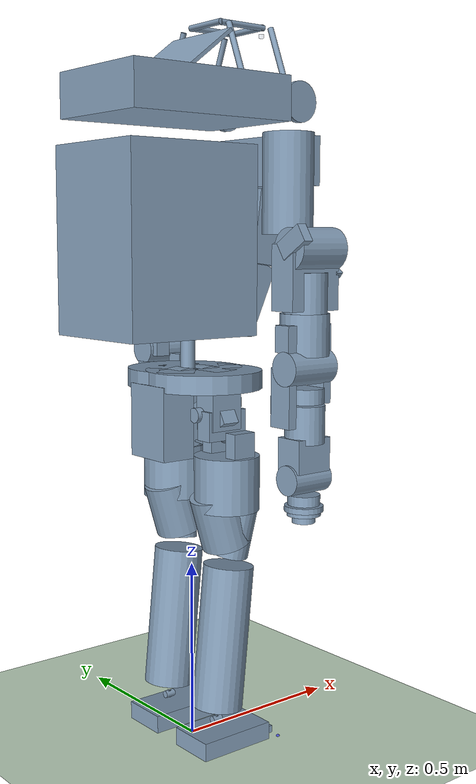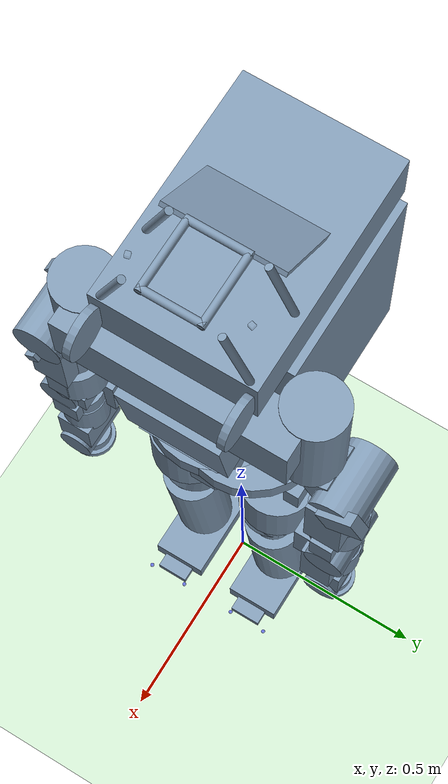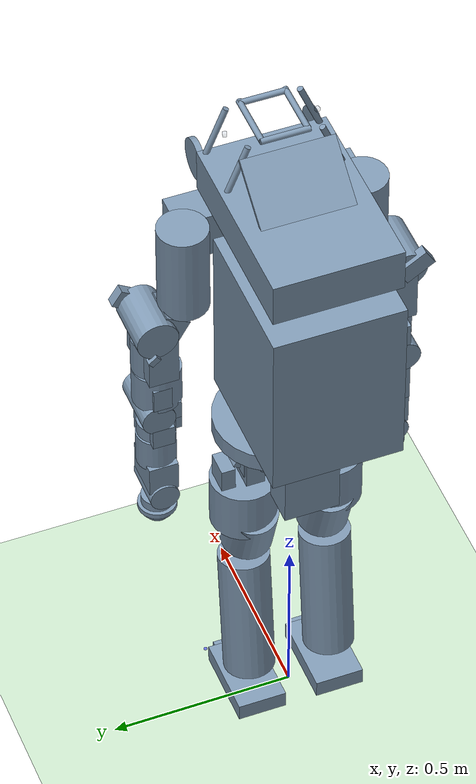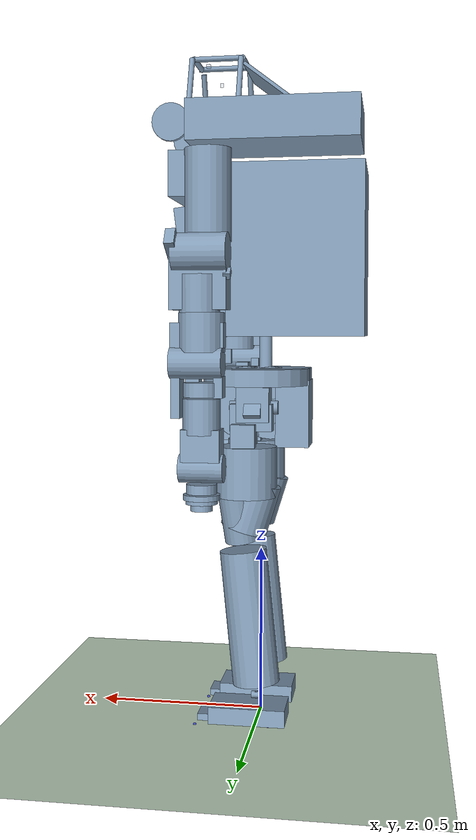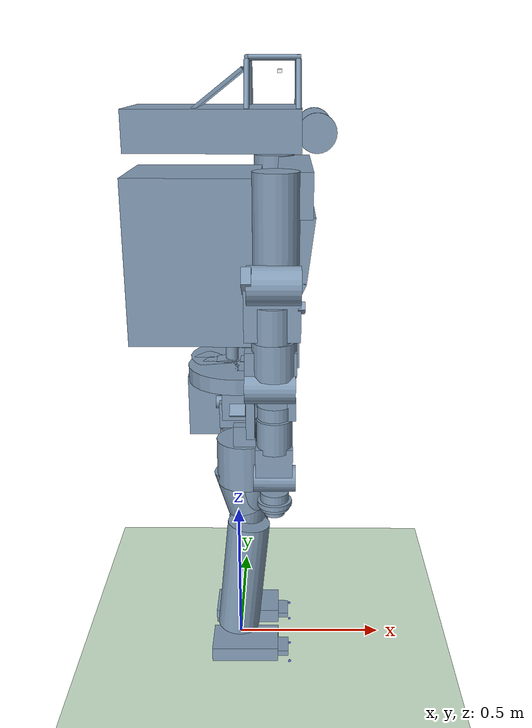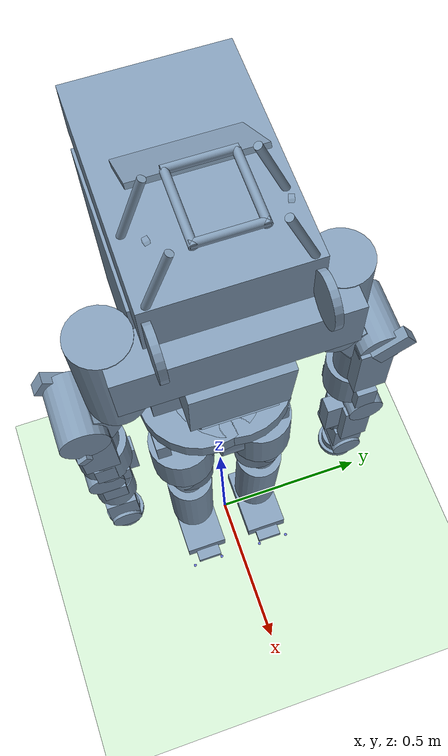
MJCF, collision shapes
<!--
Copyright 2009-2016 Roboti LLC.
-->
<mujoco model="Atlas">
	<compiler coordinate="local" angle="radian" meshdir="meshes/"/>
	<size njmax ="1000" nuserdata="600000"/>
	<default>
		<site type="sphere" size="0.005"/>
		<joint limited="true" damping="0.0" armature="0.01" type="hinge" pos="0 0 0"/>
		<geom contype="0" conaffinity="1" friction="1.0 0.1 0.1" rgba="0.5 0.6 0.7 0.2" margin="0.001" group="1" />
		<motor ctrllimited="true" ctrlrange="-0.95 0.95"/>
		<default class="viz">
			<geom contype="0" conaffinity="0" group="0" type="mesh" rgba=".6 .6 .7 1"/>
		</default>
	</default>

	<asset>
		<mesh name="pelvis"         file="pelvis.stl"/>
		<mesh name="ltorso"         file="ltorso.stl"/>
		<mesh name="mtorso"         file="mtorso.stl"/>
		<mesh name="utorso"         file="utorso.stl"/>
		<mesh name="r_clav"         file="r_clav.stl"/>
		<mesh name="r_scap"         file="r_scap.stl"/>
		<mesh name="r_uarm"         file="r_uarm.stl"/>
		<mesh name="r_larm"         file="r_larm.stl"/>
		<mesh name="r_farm"         file="r_farm.stl"/>
		<mesh name="r_hand"         file="r_hand.stl"/>
		<mesh name="l_uglut"        file="l_uglut.stl"/>
		<mesh name="l_lglut"        file="l_lglut.stl"/>
		<mesh name="l_uleg"         file="l_uleg.stl"/>
		<mesh name="l_lleg"         file="l_lleg.stl"/>
		<mesh name="l_talus"        file="l_talus.stl"/>
		<mesh name="l_foot"         file="l_foot.stl"/>
		<mesh name="r_uglut"        file="r_uglut.stl"/>
		<mesh name="r_lglut"        file="r_lglut.stl"/>
		<mesh name="r_uleg"         file="r_uleg.stl"/>
		<mesh name="r_lleg"         file="r_lleg.stl"/>
		<mesh name="r_talus"        file="r_talus.stl"/>
		<mesh name="r_foot"         file="r_foot.stl"/>

        <texture builtin="gradient" height="100" rgb1=".4 .5 .6" rgb2="0 0 0" type="skybox" width="100"/>
        <texture name="texplane" type="2d" builtin="checker" rgb1=".2 .3 .4" rgb2=".1 0.15 0.2" width="100" height="100"></texture>
        <material name="MatPlane" reflectance="0.5" texture="texplane" texrepeat="1 1" texuniform="true"></material>
	</asset>
	<option integrator="RK4" iterations="50" solver="Newton"  timestep="0.001"/>
	<visual>
        <map fogstart="2" fogend="4"/>
    </visual>

    <worldbody>

		<!-- GROUND -->
        <geom name="floor" friction="1 .1 .1" pos="0 0 0" size="500 500 0.125" type="plane" material="MatPlane" condim="3" conaffinity="1" contype="1" group="2" rgba="0.8 0.9 0.8 1"></geom>
        <light cutoff="100" diffuse="1 1 1" dir="-0 0 -1.3" directional="true" exponent="1" pos="0 0 1.3" specular=".1 .1 .1" castshadow="false"/>
        <body name="pelvis" pos="0 0 0.94">
            <inertial pos="0.0111 0 0.0271" quat="0.698584 0.713914 0.0424837 -0.0224092" mass="9.509" diaginertia="0.124488 0.116646 0.0957666" />
            <light name="spotlight" mode="trackcom" pos="0 -2 10" dir="0 0 -1"/>
            <camera name="track" mode="trackcom" pos="0 -4 0" xyaxes="1 0 0 0 0 1"/>
            <geom class="viz" mesh="pelvis"/>
            <geom type="cylinder" size="0.11 0.03" pos="0.046 0 0.01" quat="0.707107 0.707107 0 0" />
            <geom type="cylinder" size="0.11 0.03" pos="-0.03 0 0.01" quat="0.707107 0.707107 0 0" />
            <geom type="cylinder" size="0.16 0.025" pos="0.01 0.042 0.09" />
            <geom type="cylinder" size="0.16 0.025" pos="0.01 -0.042 0.09" />
            <geom type="box" size="0.05 0.075 0.1" pos="-0.1 0 -0.02" />
                <joint name="pelvis_tx" type="slide" pos="0 0 0" axis="       1        0        0" limited="false" range="      -500        500" ref="0" armature="0" damping="0" stiffness="0"></joint>
                <joint name="pelvis_tz" type="slide" pos="0 0 0" axis="       0        1        0" limited="false" range="      -300        300" ref="0" armature="0" damping="0" stiffness="0"></joint>
                <joint name="pelvis_ty" type="slide" pos="0 0 0" axis="       0        0        1" limited="false" range="      -100        200" ref="0" armature="0" damping="0" stiffness="0"></joint>
                <joint name="pelvis_tilt" type="hinge" pos="0 0 0" axis="       0        -1        0" limited="false" range=" -1.5708   1.5708" ref="0" armature="0" damping="0" stiffness="0"></joint>
                <joint name="pelvis_list" type="hinge" pos="0 0 0" axis="       1        0        0" limited="false" range=" -1.5708   1.5708" ref="0" armature="0" damping="0" stiffness="0"></joint>
                <joint name="pelvis_rotation" type="hinge" pos="0 0 0" axis="       0        0        1" limited="false" range=" -1.5708   1.5708" ref="0" armature="0" damping="0" stiffness="0"></joint>
            <body name="ltorso" pos="-0.0125 0 0">
                <inertial pos="-0.0112984 -3.15366e-006 0.0746835" quat="0.997071 0.000128212 0.076485 -0.00012406" mass="2.27" diaginertia="0.003962 0.00341694 0.00169212" />
                <joint name="back_bkz" stiffness="20" damping="10" axis="0 0 1" range="-0.663225 0.663225"/>
                <geom class="viz" mesh="ltorso"/>
                <body name="mtorso" pos="0 0 0.162">
                    <inertial pos="-0.00816266 -0.0131245 0.0305974" quat="0.108378 0.49314 0.746335 0.433648" mass="0.799" diaginertia="0.000536243 0.000487378 0.000358057" />
                    <joint name="back_bky" stiffness="20" damping="10" axis="0 1 0" range="-0.219388 0.538783"/>
                    <geom class="viz" mesh="mtorso"/>
                    <geom type="cylinder" size="0.02 0.075" pos="0 0 -0.02" />
                    <body name="utorso" pos="0 0 0.05">
                        <inertial pos="-0.0622 0.0023 0.3157" quat="0.450601 -0.0341277 -0.0439518 0.89099" mass="84.409" diaginertia="1.62425 1.5673 0.552443" />
                        <joint name="back_bkx" stiffness="30" damping="10" axis="1 0 0" range="-0.523599 0.523599"/>
                        <geom class="viz" mesh="utorso"/>
                        <geom type="box" size="0.2 0.175 0.25" pos="-0.102 0 0.25" />
                        <geom type="box" size="0.065 0.25 0.05" pos="0.2 0 0.46" quat="0.707141 0 0.707073 0" />
                        <geom type="box" size="0.1 0.115 0.05" pos="0.2 0 0.285" quat="0.659983 0 0.75128 0" />
                        <geom type="box" size="0.1 0.09 0.05" pos="0.15 0 0.1" quat="0.540302 0 0.841471 0" />
                        <geom type="box" size="0.253153 0.17086 0.06" pos="-0.035 0 0.6265" />
                        <geom type="cylinder" size="0.008 0.065" pos="0.208 0 0.8215" quat="0.707141 0.707073 0 0" />
                        <geom type="cylinder" size="0.008 0.075" pos="0.208 -0.125 0.745" quat="0.981496 -0.191485 0 0" />
                        <geom type="cylinder" size="0.008 0.075" pos="0.208 0.125 0.745" quat="0.981496 0.191485 0 0" />
                        <geom type="cylinder" size="0.008 0.075" pos="0.063 -0.125 0.745" quat="0.981496 -0.191485 0 0" />
                        <geom type="cylinder" size="0.008 0.075" pos="0.063 0.125 0.745" quat="0.981496 0.191485 0 0" />
                        <geom type="cylinder" size="0.008 0.075" pos="0.14 0.06 0.8215" quat="0.500048 0.5 0.499952 0.5" />
                        <geom type="cylinder" size="0.008 0.075" pos="0.14 -0.06 0.8215" quat="0.500048 0.5 0.499952 0.5" />
                        <geom type="box" size="0.1 0.125 0.005" pos="-0.029 0 0.731" quat="0.947651 0 -0.319309 0" />
                        <geom type="cylinder" size="0.008 0.065" pos="0.063 0 0.8215" quat="0.707141 0.707073 0 0" />
                        <geom type="cylinder" size="0.055 0.008" pos="0.261 0.156 0.6215" quat="0.707141 0.707073 0 0" />
                        <geom type="cylinder" size="0.055 0.008" pos="0.261 -0.156 0.6215" quat="0.707141 0.707073 0 0" />
                        <body name="l_clav" pos="0.1406 0.2256 0.4776" quat="0 0 0 1">
                            <inertial pos="0 0 -0.084" quat="0.684588 0.177029 -0.177029 0.684588" mass="4.466" diaginertia="0.011217 0.011 0.00178301" />
                            <joint name="l_arm_shz" axis="0 0 1" range="-1.5708 0.785398"/>
                            <geom class="viz" mesh="r_clav"/>
                            <geom type="cylinder" size="0.0555 0.07625" pos="0 -0.11 -0.248" quat="0.707107 0 0.707107 0" />
                            <geom type="cylinder" size="0.067 0.13" pos="0.005 -0.015 -0.08" />
                            <geom type="box" size="0.05 0.035 0.036" pos="0.004 -0.064 -0.247" quat="0.865324 0.501213 0 0" />
                            <body name="l_scap" pos="0 -0.11 -0.245" axisangle="1 0 0 1.5708">
                                <inertial pos="0 0 0" quat="0.5 0.5 0.5 0.5" mass="3.899" diaginertia="0.00583 0.00583 0.00319" />
                                <joint name="l_arm_shx" axis="-1 0 0" range="-1.5708 1.5708"/>
                                <geom class="viz" mesh="r_scap"/>
                                <geom type="cylinder" size="0.057 0.0525" pos="-0.005 -0.115 -0.014" quat="0.707107 0.707107 0 0" />
                                <geom type="box" size="0.08 0.085 0.04" pos="-0.005 -0.075 -0.015" />
                                <geom type="box" size="0.01 0.0145 0.009" pos="0.076 -0.0615 0.0128" quat="0.431177 0.902268 0 0" />
                                <geom type="box" size="0.014 0.045 0.025" pos="-0.075 0.015 0.019" quat="0.877583 0.479426 0 0" />
                                <body name="l_uarm" pos="0 -0.187 -0.016">
                                    <inertial pos="0 0.065 0" quat="0.707107 0.707107 0 0" mass="4.386" diaginertia="0.00656 0.00656 0.00358" />
                                    <joint name="l_arm_ely" axis="0 -1 0" range="0 3.14159"/>
                                    <geom class="viz" mesh="r_uarm"/>
                                    <geom type="cylinder" size="0.065 0.055" pos="0 -0.035 -0.005" quat="0.707105 0.707108 0 0" />
                                    <geom type="box" size="0.025 0.035 0.075" pos="-0.01 -0.043 0.002" quat="0.707107 0 0.707107 0" />
                                    <body name="l_larm" pos="0 -0.119 0.0092">
                                        <inertial pos="0 0 0" quat="0.5 0.5 0.5 0.5" mass="3.248" diaginertia="0.00446 0.00446 0.00265" />
                                        <joint name="l_arm_elx" axis="-1 0 0" range="0 2.35619"/>
                                        <geom class="viz" mesh="r_larm"/>
                                        <geom type="cylinder" size="0.051 0.02" pos="0 -0.075 -0.01" quat="0.707107 -0.707107 0 0" />
                                        <geom type="cylinder" size="0.045 0.0735" pos="-0.012 0 0.0025" quat="0.707107 0 0.707107 0" />
                                        <geom type="box" size="0.0125 0.0775 0.035" pos="-0.07 -0.077 -0.015" />
                                        <geom type="box" size="0.0125 0.03 0.03" pos="0.05 -0.067 -0.009" />
                                        <geom type="box" size="0.02 0.0575 0.025" pos="-0.032 -0.071 -0.06" />
                                        <geom type="box" size="0.0225 0.0275 0.0115" pos="0.03 0.01 -0.05" />
                                        <body name="l_ufarm" pos="0 -0.29955 -0.00921" quat="0 0 1 0">
                                            <inertial pos="0.00015 0.08296 0.00037" quat="0.707107 0.707107 0 0" mass="2.4798" diaginertia="0.012731 0.011948 0.002857" />
                                            <joint name="l_arm_wry" axis="0 -1 0" range="-3.011 3.011"/>
                                            <geom class="viz" mesh="r_farm"/>
                                            <geom type="cylinder" size="0.053 0.05" pos="0 0.15 0" quat="0.707388 0.706825 0 0" />
                                            <geom type="box" size="0.04 0.045 0.055" pos="-0.001 0.07 0" quat="0.707107 0 0.707107 0" />
                                            <geom type="cylinder" size="0.04 0.0625" pos="0 0.005 0" quat="0.707388 0 0.706825 0" />
                                            <body name="l_lfarm" pos="0 0 0">
                                                <inertial pos="0.00017 -0.02515 0.00163" quat="0.5 0.5 -0.5 0.5" mass="0.648" diaginertia="0.000825 0.000764 0.000429" />
                                                <joint name="l_arm_wrx" axis="1 0 0" range="-1.7628 1.7628"/>
                                                <geom class="viz" mesh="r_hand"/>
                                                <geom type="cylinder" size="0.031 0.01" pos="0 -0.104 0" quat="0.707107 0.707107 0 0" />
                                                <geom type="cylinder" size="0.045 0.0075" pos="0 -0.087 0" quat="0.707107 0.707107 0 0" />
                                                <geom type="cylinder" size="0.052 0.0075" pos="0 -0.075 0" quat="0.707107 0.707107 0 0" />
                                                <geom type="cylinder" size="0.043 0.0135" pos="0 -0.052 0" quat="0.707107 0.707107 0 0" />
                                            </body>
                                        </body>
                                    </body>
                                </body>
                            </body>
                        </body>
                        <body name="r_clav" pos="0.1406 -0.2256 0.4776">
                            <inertial pos="0 0 -0.084" quat="0.684588 0.177029 -0.177029 0.684588" mass="4.466" diaginertia="0.011217 0.011 0.00178301" />
                            <joint name="r_arm_shz" axis="0 0 1" range="-0.785398 1.5708"/>
                            <geom class="viz" mesh="r_clav"/>
                            <geom type="cylinder" size="0.0555 0.07625" pos="0 -0.11 -0.248" quat="0.707107 0 0.707107 0" />
                            <geom type="cylinder" size="0.067 0.13" pos="0.005 -0.015 -0.08" />
                            <geom type="box" size="0.05 0.035 0.036" pos="0.004 -0.064 -0.247" quat="0.865324 0.501213 0 0" />
                            <body name="r_scap" pos="0 -0.11 -0.245" axisangle="1 0 0 1.5708">
                                <inertial pos="0 0 0" quat="0.5 0.5 0.5 0.5" mass="3.899" diaginertia="0.00583 0.00583 0.00319" />
                                <joint name="r_arm_shx" axis="1 0 0" range="-1.5708 1.5708"/>
                                <geom class="viz" mesh="r_scap"/>
                                <geom type="cylinder" size="0.057 0.0525" pos="-0.005 -0.115 -0.014" quat="0.707107 0.707107 0 0" />
                                <geom type="box" size="0.08 0.085 0.04" pos="-0.005 -0.075 -0.015" />
                                <geom type="box" size="0.01 0.0145 0.009" pos="0.076 -0.0615 0.0128" quat="0.431177 0.902268 0 0" />
                                <geom type="box" size="0.014 0.045 0.025" pos="-0.075 0.015 0.019" quat="0.877583 0.479426 0 0" />
                                <body name="r_uarm" pos="0 -0.187 -0.016">
                                    <inertial pos="0 0.065 0" quat="0.707107 0.707107 0 0" mass="4.386" diaginertia="0.00656 0.00656 0.00358" />
                                    <joint name="r_arm_ely" axis="0 1 0" range="0 3.14159"/>
                                    <geom class="viz" mesh="r_uarm"/>
                                    <geom type="cylinder" size="0.065 0.055" pos="0 -0.035 -0.005" quat="0.707105 0.707108 0 0" />
                                    <geom type="box" size="0.025 0.035 0.075" pos="-0.01 -0.043 0.002" quat="0.707107 0 0.707107 0" />
                                    <body name="r_larm" pos="0 -0.119 0.0092">
                                        <inertial pos="0 0 0" quat="0.5 0.5 0.5 0.5" mass="3.248" diaginertia="0.00446 0.00446 0.00265" />
                                        <joint name="r_arm_elx" axis="1 0 0" range="-2.35619 0"/>
                                        <geom class="viz" mesh="r_larm"/>
                                        <geom type="cylinder" size="0.051 0.02" pos="0 -0.075 -0.01" quat="0.707107 -0.707107 0 0" />
                                        <geom type="cylinder" size="0.045 0.0735" pos="-0.012 0 0.0025" quat="0.707107 0 0.707107 0" />
                                        <geom type="box" size="0.0125 0.0775 0.035" pos="-0.07 -0.077 -0.015" />
                                        <geom type="box" size="0.0125 0.03 0.03" pos="0.05 -0.067 -0.009" />
                                        <geom type="box" size="0.02 0.0575 0.025" pos="-0.032 -0.071 -0.06" />
                                        <geom type="box" size="0.0225 0.0275 0.0115" pos="0.03 0.01 -0.05" />
                                        <body name="r_ufarm" pos="0 -0.29955 -0.00921">
                                            <inertial pos="0.00015 0.08296 0.00037" quat="0.707107 0.707107 0 0" mass="2.4798" diaginertia="0.012731 0.011948 0.002857" />
                                            <joint name="r_arm_wry" axis="0 1 0" range="-3.011 3.011"/>
                                            <geom class="viz" mesh="r_farm"/>
                                            <geom type="cylinder" size="0.053 0.05" pos="0 0.15 0" quat="0.707388 0.706825 0 0" />
                                            <geom type="box" size="0.04 0.045 0.055" pos="-0.001 0.07 0" quat="0.707107 0 0.707107 0" />
                                            <geom type="cylinder" size="0.04 0.0625" pos="0 0.005 0" quat="0.707388 0 0.706825 0" />
                                            <body name="r_lfarm" pos="0 0 0">
                                                <inertial pos="0.00017 -0.02515 0.00163" quat="0.5 0.5 -0.5 0.5" mass="0.648" diaginertia="0.000825 0.000764 0.000429" />
                                                <joint name="r_arm_wrx" axis="1 0 0" range="-1.7628 1.7628"/>
                                                <geom class="viz" mesh="r_hand"/>
                                                <geom type="cylinder" size="0.031 0.01" pos="0 -0.104 0" quat="0.707107 0.707107 0 0" />
                                                <geom type="cylinder" size="0.045 0.0075" pos="0 -0.087 0" quat="0.707107 0.707107 0 0" />
                                                <geom type="cylinder" size="0.052 0.0075" pos="0 -0.075 0" quat="0.707107 0.707107 0 0" />
                                                <geom type="cylinder" size="0.043 0.0135" pos="0 -0.052 0" quat="0.707107 0.707107 0 0" />
                                            </body>
                                        </body>
                                    </body>
                                </body>
                            </body>
                        </body>
                        <body name="r_situational_awareness_camera_link" pos="0.155 -0.121 0.785" quat="0.793352 0 0 -0.608763">
                            <inertial pos="0 0 0" mass="0.1" diaginertia="1e-005 1e-005 1e-005" />
                            <geom type="box" contype="0" conaffinity="0" group="1" size="0.005 0.005 0.005" pos="0 0 0" />
                            <body name="r_situational_awareness_camera_optical_frame" pos="0 0 0" quat="0.499998 -0.5 0.500002 -0.5">
                                <inertial pos="0 0 0" quat="0.499998 -0.5 0.500002 -0.5" mass="0" diaginertia="0 0 0" />
                            </body>
                        </body>
                        <body name="l_situational_awareness_camera_link" pos="0.155 0.121 0.785" quat="0.793352 0 0 0.608763">
                            <inertial pos="0 0 0" mass="0.1" diaginertia="1e-005 1e-005 1e-005" />
                            <geom type="box" contype="0" conaffinity="0" group="1" size="0.005 0.005 0.005" pos="0 0 0" />
                            <body name="l_situational_awareness_camera_optical_frame" pos="0 0 0" quat="0.499998 -0.5 0.500002 -0.5">
                                <inertial pos="0 0 0" quat="0.499998 -0.5 0.500002 -0.5" mass="0" diaginertia="0 0 0" />
                            </body>
                        </body>
                    </body>
                </body>
            </body>
            <body name="l_uglut" pos="0 0.089 0" >
                <inertial pos="0.00529262 -0.00344732 0.00313046" quat="0.999122 -7.72169e-005 0.0419028 -0.000305187" mass="1.959" diaginertia="0.000745109 0.000688179 0.000410071" />
                <joint name="hip_flexion_l" damping="0" axis="0 -1 0" range="-0.786794 0.786794"/>
                <geom class="viz" mesh="l_uglut"/>
                <geom type="box" size="0.025 0.05 0.05" pos="0.01 0.005 0" quat="0.965694 0.259684 0 0" />
                <geom type="cylinder" size="0.019841 0.040421" pos="0 0 0" />
                <body name="l_lglut" pos="0 0 0">
                    <inertial pos="0.0133341 0.0170484 -0.0312052" quat="0.353465 0.600383 0.388609 0.602981" mass="0.898" diaginertia="0.00133867 0.000995812 0.000690275" />
                    <joint name="hip_adduction_l" damping="0" axis="-1 0 0" range="-0.523599 0.523599"/>
                    <geom class="viz" mesh="l_lglut"/>
                    <geom type="box" size="0.0625 0.025 0.04" pos="0.015 0.026 -0.028" />
                    <geom type="cylinder" size="0.0200969 0.030153" pos="0.05 0.027488 -0.067" quat="0.707107 0.707107 0 0" />
                    <geom type="cylinder" size="0.02 0.072" pos="0.0115 0 0" quat="0.707107 0 0.707107 0" />
                    <geom type="box" size="0.04875 0.0345 0.0515" pos="0.01 0.02 0.01" />
                    <body name="l_uleg" pos="0.05 0.0225 -0.066">
                        <inertial pos="0 0 -0.21" mass="8.204" diaginertia="0.09 0.09 0.02" />
                        <joint name="hip_rotation_l" damping="0" axis="0 0 -1" range="-1.61234 1.61234"/>
                        <geom class="viz" mesh="l_uleg"/>
                        <geom type="cylinder" size="0.09 0.075" pos="-0.0199 0.00585 -0.122" />
                        <geom type="cylinder" size="0.07 0.075" pos="-0.032 -0.005 -0.224" quat="0.988771 0 -0.149438 0" />
                        <geom type="cylinder" size="0.05 0.075" pos="0.003 0.015 -0.254" quat="0.995083 -0.0747715 0.0647716 0.004867" />
                        <geom type="box" size="0.035 0.019 0.075" pos="-0.007 -0.053 -0.052" />
                        <geom type="box" size="0.035 0.019 0.07" pos="-0.017 0.0595 -0.049" />
                        <body name="l_lleg" pos="-0.05 0 -0.374">
                            <inertial pos="0.001 0 -0.187" quat="0.999751 0 0.0223266 0" mass="4.515" diaginertia="0.0771341 0.076 0.00986594" />
                            <joint name="knee_angle_l" damping="0" axis="0 -1 0"    range="-2.35637 0.174"/>
                            <geom class="viz" mesh="l_lleg"/>
                            <geom type="cylinder" size="0.07 0.2" pos="0.02 0.00295 -0.182" quat="0.99875 0 0.0499792 0" />
                            <body name="l_talus" pos="0 0 -0.422">
                                <inertial pos="0 0 0" quat="0.5 0.5 -0.5 0.5" mass="0.125" diaginertia="1.30101e-005 1.01674e-005 8.42775e-006" />
                                <joint name="ankle_angle_l" damping="0" axis="0 -1 0"   range="-1.0 1.0"/>
                                <geom class="viz" mesh="l_talus"/>
                                <geom type="cylinder" size="0.010181 0.014771" pos="0 0 0" quat="0.707107 0 0.707107 0" />
                                <geom type="cylinder" size="0.010348 0.0050295" pos="0 0 0" quat="0.707107 0.707107 0 0" />
                                <body name="l_foot" pos="0 0 0">
                                    <inertial pos="0.027 0 -0.067" quat="0 0.707107 0 0.707107" mass="2.41" diaginertia="0.008 0.007 0.002" />
                                    <geom class="viz" mesh="l_foot"/>
                                    <geom name="left_foot_back" type="box" size="0.1135 0.0669435 0.025" pos="0.023 0 -0.049119" />
                                    <geom name="left_foot_front" type="box" size="0.05 0.04 0.01" pos="0.1225 0 -0.0641" />
                                    <site name='left_foot_front_left' type="sphere" size="0.005" pos="0.1775 0.06 -0.08" rgba="0 0 .99 0.5" />
                                    <site name='left_foot_front_right' type="sphere" size="0.005" pos="0.1775 -0.04 -0.08" rgba="0 0 .99 0.5" />
                                    <site name='left_foot_back_left' type="sphere" size="0.005" pos="-0.0425 0.05 -0.08" rgba="0 0 .99 0.5" />
                                    <site name='left_foot_back_right' type="sphere" size="0.005" pos="-0.0425 -0.05 -0.08" rgba="0 0 .99 0.5" />
                                </body>
                            </body>
                        </body>
                    </body>
                </body>
            </body>
            <body name="r_uglut" pos="0 -0.089 0">
                <inertial pos="0.00529262 0.00344732 0.00313046" quat="0.999122 7.72169e-005 0.0419028 0.000305187" mass="1.959" diaginertia="0.000745109 0.000688179 0.000410071" />
                <joint name="hip_flexion_r" damping="0" axis="0 -1 0" range="-0.786794 0.786794"/>
                <geom class="viz" mesh="r_uglut"/>
                <geom type="box" size="0.025 0.05 0.05" pos="0.01 -0.005 0" quat="0.965694 -0.259684 0 0" />
                <geom type="cylinder" size="0.019841 0.040421" pos="0 0 0" />
                <body name="r_lglut" pos="0 0 0">
                    <inertial pos="0.0133341 -0.0170484 -0.0312052" quat="0.602981 0.388609 0.600383 0.353465" mass="0.898" diaginertia="0.00133867 0.000995812 0.000690275" />
                    <joint name="hip_adduction_r" damping="0" axis="1 0 0" range="-0.523599 0.523599"/>
                    <geom class="viz" mesh="r_lglut"/>
                    <geom type="box" size="0.0625 0.025 0.04" pos="0.015 -0.026 -0.028" />
                    <geom type="cylinder" size="0.0200969 0.030153" pos="0.05 -0.027488 -0.067" quat="0.707107 0.707107 0 0" />
                    <geom type="cylinder" size="0.02 0.071" pos="0.0105 0 0" quat="0.707107 0 0.707107 0" />
                    <geom type="box" size="0.04875 0.0345 0.0515" pos="0.01 -0.02 0.01" />
                    <body name="r_uleg" pos="0.05 -0.0225 -0.066">
                        <inertial pos="0 0 -0.21" mass="8.204" diaginertia="0.09 0.09 0.02" />
                        <joint name="hip_rotation_r" damping="0" axis="0 0 1"   range="-1.61234 1.61234"/>
                        <geom class="viz" mesh="r_uleg"/>
                        <geom type="cylinder" size="0.09 0.075" pos="-0.0199 -0.00585 -0.122" />
                        <geom type="cylinder" size="0.07 0.075" pos="-0.032 0.005 -0.224" quat="0.988771 0 -0.149438 0" />
                        <geom type="cylinder" size="0.05 0.075" pos="0.003 -0.015 -0.254" quat="0.995083 0.0747715 0.0647716 -0.004867" />
                        <geom type="box" size="0.035 0.019 0.075" pos="-0.007 0.053 -0.052" />
                        <geom type="box" size="0.035 0.019 0.07" pos="-0.017 -0.0595 -0.049" />
                        <body name="r_lleg" pos="-0.05 0 -0.374">
                            <inertial pos="0.001 0 -0.187" quat="0.999751 0 0.0223266 0" mass="4.515" diaginertia="0.0771341 0.076 0.00986594" />
                            <joint name="knee_angle_r" damping="0" axis="0 -1 0"   range="-2.35637 0.174"/>
                            <geom class="viz" mesh="r_lleg"/>
                            <geom type="cylinder" size="0.07 0.2" pos="0.02 -0.00295 -0.182" quat="0.99875 0 0.0499792 0" />
                            <body name="r_talus" pos="0 0 -0.422">
                                <inertial pos="0 0 0" quat="0.5 0.5 -0.5 0.5" mass="0.125" diaginertia="1.30101e-005 1.01674e-005 8.42775e-006" />
                                <joint name="ankle_angle_r" damping="0" axis="0 -1 0"   range="-1.0 1.0"/>
                                <geom class="viz" mesh="r_talus"/>
                                <geom type="cylinder" size="0.010181 0.014771" pos="0 0 0" quat="0.707107 0 0.707107 0" />
                                <geom type="cylinder" size="0.010348 0.0050295" pos="0 0 0" quat="0.707107 0.707107 0 0" />
                                <body name="r_foot" pos="0 0 0">
                                    <inertial pos="0.027 0 -0.067" quat="0 0.707107 0 0.707107" mass="2.41" diaginertia="0.008 0.007 0.002" />
                                    <geom class="viz" mesh="r_foot"/>
                                    <geom name="right_foot_back" type="box" size="0.1135 0.0669435 0.025" pos="0.023 0 -0.049119" />
                                    <geom name="right_foot_front" type="box" size="0.05 0.04 0.01" pos="0.1225 0 -0.0641" />
                                    <site name='right_foot_front_left' type="sphere" size="0.005" pos="0.1775 0.04 -0.08" rgba="0 0 .99 0.5" />
                                    <site name='right_foot_front_right' type="sphere" size="0.005" pos="0.1775 -0.06 -0.08" rgba="0 0 .99 0.5" />
                                    <site name='right_foot_back_left' type="sphere" size="0.005" pos="-0.0425 0.05 -0.08" rgba="0 0 .99 0.5" />
                                    <site name='right_foot_back_right' type="sphere" size="0.005" pos="-0.0425 -0.05 -0.08" rgba="0 0 .99 0.5" />
                                </body>
                            </body>
                        </body>
                    </body>
                </body>
            </body>
        </body>
    </worldbody>

	<actuator>
		<motor name="back_bkz_actuator"  joint="back_bkz" gear="106"/>
		<motor name="back_bky_actuator"  joint="back_bky" gear="445"/>
		<motor name="back_bkx_actuator"  joint="back_bkx" gear="300"/>

		<motor name="l_arm_shz_actuator" joint="l_arm_shz" gear="87"/>
		<motor name="l_arm_shx_actuator" joint="l_arm_shx" gear="99"/>
		<motor name="l_arm_ely_actuator" joint="l_arm_ely" gear="63"/>
		<motor name="l_arm_elx_actuator" joint="l_arm_elx" gear="112"/>
		<motor name="l_arm_wry_actuator" joint="l_arm_wry" gear="25"/>
		<motor name="l_arm_wrx_actuator" joint="l_arm_wrx" gear="25"/>

		<motor name="r_arm_shz_actuator" joint="r_arm_shz" gear="87"/>
		<motor name="r_arm_shx_actuator" joint="r_arm_shx" gear="99"/>
		<motor name="r_arm_ely_actuator" joint="r_arm_ely" gear="63"/>
		<motor name="r_arm_elx_actuator" joint="r_arm_elx" gear="112"/>
		<motor name="r_arm_wry_actuator" joint="r_arm_wry" gear="25"/>
		<motor name="r_arm_wrx_actuator" joint="r_arm_wrx" gear="25"/>

		<motor name="hip_flexion_l_actuator" joint="hip_flexion_l" gear="840"/>
		<motor name="hip_adduction_l_actuator" joint="hip_adduction_l" gear="530"/>
		<motor name="hip_rotation_l_actuator" joint="hip_rotation_l" gear="275"/>
		<motor name="knee_angle_l_actuator" joint="knee_angle_l" gear="890"/>
		<motor name="ankle_angle_l_actuator" joint="ankle_angle_l" gear="740"/>

		<motor name="hip_flexion_r_actuator" joint="hip_flexion_r" gear="840"/>
		<motor name="hip_adduction_r_actuator" joint="hip_adduction_r" gear="530"/>
		<motor name="hip_rotation_r_actuator" joint="hip_rotation_r" gear="275"/>
		<motor name="knee_angle_r_actuator" joint="knee_angle_r" gear="890"/>
		<motor name="ankle_angle_r_actuator" joint="ankle_angle_r" gear="740"/>

	</actuator>

</mujoco>
